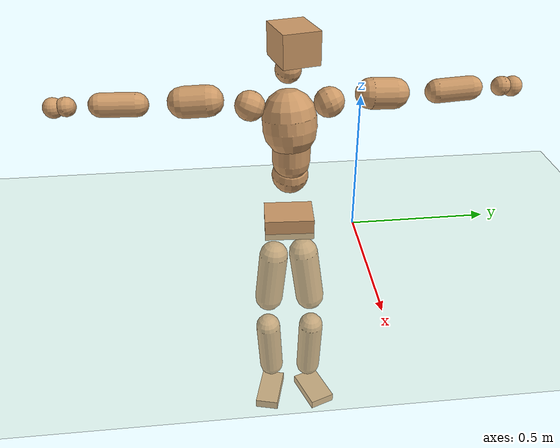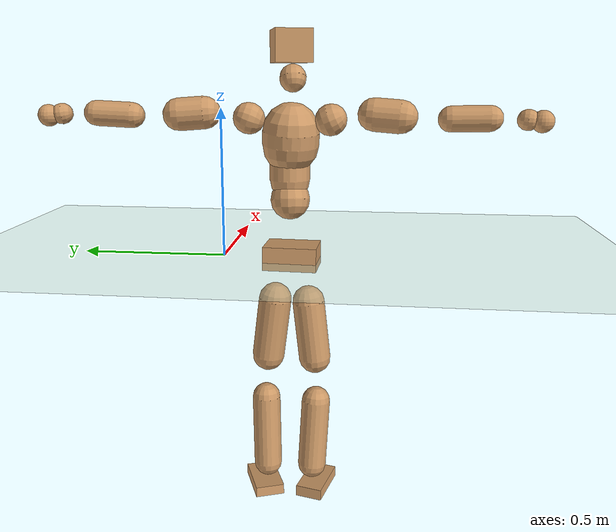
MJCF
<mujoco model="humanoid">
  <compiler coordinate="local" angle="radian"/>
  <default>
    <joint damping="0.0" armature="0.01" stiffness="0.0" limited="true"/>
    <geom conaffinity="1" condim="3" contype="7" margin="0.001" rgba="0.8 0.6 .4 1"/>
  </default>
  <asset>
    <texture type="skybox" builtin="gradient" rgb1=".4 .5 .6" rgb2="0 0 0" width="100" height="100"/>
    <texture builtin="flat" height="1278" mark="cross" markrgb="1 1 1" name="texgeom" random="0.01" rgb1="0.8 0.6 0.4" rgb2="0.8 0.6 0.4" type="cube" width="127"/>
    <texture builtin="checker" height="100" name="texplane" rgb1="0 0 0" rgb2="0.8 0.8 0.8" type="2d" width="100"/>
    <material name="MatPlane" reflectance="0.5" shininess="1" specular="1" texrepeat="60 60" texture="texplane"/>
    <material name="geom" texture="texgeom" texuniform="true"/>
  </asset>
  <worldbody>
    <light cutoff="100" diffuse="1 1 1" dir="-0 0 -1.3" directional="true" exponent="1" pos="0 0 1.3" specular=".1 .1 .1"/>
    <geom conaffinity="1" condim="3" name="floor" pos="0 0 0" rgba="0.8 0.9 0.8 1" size="100 100 .2" type="plane" material="MatPlane"/>
    <body name="Pelvis" pos="-0.0076 -0.2401 0.0196">
      <freejoint name="Pelvis"/>
      <geom type="box" contype="1" conaffinity="1" density="5359.374756" pos="-0.0120 0.0006 -0.0079" size="0.0676 0.0904 0.04" quat="0.9997 0.0000 0.0000 -0.0243" name="Pelvis"/>
      <body name="L_Hip" pos="-0.022 0.0476 -0.0773">
        <joint name="L_Hip_x" type="hinge" pos="0 0 0" axis="1 0 0" stiffness="1600" damping="160" armature="0.02" range="-180.0000 180.0000"/>
        <joint name="L_Hip_y" type="hinge" pos="0 0 0" axis="0 1 0" stiffness="1600" damping="160" armature="0.02" range="-180.0000 180.0000"/>
        <joint name="L_Hip_z" type="hinge" pos="0 0 0" axis="0 0 1" stiffness="1600" damping="160" armature="0.02" range="-180.0000 180.0000"/>
        <geom type="capsule" contype="1" conaffinity="1" density="2040.816327" size="0.0564" fromto="0.0043 0.0107 -0.0857 0.0151 0.0374 -0.3000" name="L_Hip"/>
        <body name="L_Knee" pos="0.0194 0.048 -0.3856">
          <joint name="L_Knee_x" type="hinge" pos="0 0 0" axis="1 0 0" stiffness="1600" damping="160" armature="0.02" range="-180.0000 180.0000"/>
          <joint name="L_Knee_y" type="hinge" pos="0 0 0" axis="0 1 0" stiffness="1600" damping="160" armature="0.02" range="-180.0000 180.0000"/>
          <joint name="L_Knee_z" type="hinge" pos="0 0 0" axis="0 0 1" stiffness="1600" damping="160" armature="0.02" range="-180.0000 180.0000"/>
          <geom type="capsule" contype="1" conaffinity="1" density="1234.567901" size="0.0499" fromto="-0.0059 -0.0023 -0.0797 -0.0246 -0.0095 -0.3341" name="L_Knee"/>
          <body name="L_Ankle" pos="-0.0305 -0.0117 -0.4137">
            <joint name="L_Ankle_x" type="hinge" pos="0 0 0" axis="1 0 0" stiffness="1600" damping="160" armature="0.02" range="-180.0000 180.0000"/>
            <joint name="L_Ankle_y" type="hinge" pos="0 0 0" axis="0 1 0" stiffness="1600" damping="160" armature="0.02" range="-180.0000 180.0000"/>
            <joint name="L_Ankle_z" type="hinge" pos="0 0 0" axis="0 0 1" stiffness="1600" damping="160" armature="0.02" range="-180.0000 180.0000"/>
            <geom type="box" contype="1" conaffinity="1" density="1000.000052" pos="0.0592 0.0223 -0.0298" size="0.0864 0.0523 0.019" quat="0.9839 0.0000 0.0000 0.1789" name="L_Ankle"/>
            <body name="L_Toe" pos="0.1185 0.0446 -0.0597">
              <joint name="L_Toe_x" type="hinge" pos="0 0 0" axis="1 0 0" stiffness="1000" damping="100" armature="0.02" range="-180.0000 180.0000"/>
              <joint name="L_Toe_y" type="hinge" pos="0 0 0" axis="0 1 0" stiffness="1000" damping="100" armature="0.02" range="-180.0000 180.0000"/>
              <joint name="L_Toe_z" type="hinge" pos="0 0 0" axis="0 0 1" stiffness="1000" damping="100" armature="0.02" range="-180.0000 180.0000"/>
              <geom type="box" contype="1" conaffinity="1" density="7764624.532306" pos="0.0000 0.0000 0.0311" size="0.001 0.0026 0.001" quat="0.9830 0.0000 0.0000 0.1833" name="L_Toe"/>
            </body>
          </body>
        </body>
      </body>
      <body name="R_Hip" pos="-0.0197 -0.0479 -0.0844">
        <joint name="R_Hip_x" type="hinge" pos="0 0 0" axis="1 0 0" stiffness="1600" damping="160" armature="0.02" range="-180.0000 180.0000"/>
        <joint name="R_Hip_y" type="hinge" pos="0 0 0" axis="0 1 0" stiffness="1600" damping="160" armature="0.02" range="-180.0000 180.0000"/>
        <joint name="R_Hip_z" type="hinge" pos="0 0 0" axis="0 0 1" stiffness="1600" damping="160" armature="0.02" range="-180.0000 180.0000"/>
        <geom type="capsule" contype="1" conaffinity="1" density="2040.816327" size="0.0554" fromto="0.0011 -0.0098 -0.0848 0.0040 -0.0337 -0.2932" name="R_Hip"/>
        <body name="R_Knee" pos="0.0051 -0.0435 -0.378">
          <joint name="R_Knee_x" type="hinge" pos="0 0 0" axis="1 0 0" stiffness="1600" damping="160" armature="0.02" range="-180.0000 180.0000"/>
          <joint name="R_Knee_y" type="hinge" pos="0 0 0" axis="0 1 0" stiffness="1600" damping="160" armature="0.02" range="-180.0000 180.0000"/>
          <joint name="R_Knee_z" type="hinge" pos="0 0 0" axis="0 0 1" stiffness="1600" damping="160" armature="0.02" range="-180.0000 180.0000"/>
          <geom type="capsule" contype="1" conaffinity="1" density="1234.567901" size="0.0503" fromto="-0.0056 0.0035 -0.0800 -0.0228 0.0143 -0.3258" name="R_Knee"/>
          <body name="R_Ankle" pos="-0.0285 0.0179 -0.4058">
            <joint name="R_Ankle_x" type="hinge" pos="0 0 0" axis="1 0 0" stiffness="1600" damping="160" armature="0.02" range="-180.0000 180.0000"/>
            <joint name="R_Ankle_y" type="hinge" pos="0 0 0" axis="0 1 0" stiffness="1600" damping="160" armature="0.02" range="-180.0000 180.0000"/>
            <joint name="R_Ankle_z" type="hinge" pos="0 0 0" axis="0 0 1" stiffness="1600" damping="160" armature="0.02" range="-180.0000 180.0000"/>
            <geom type="box" contype="1" conaffinity="1" density="1000.000006" pos="0.0636 -0.0164 -0.0300" size="0.0886 0.0474 0.0201" quat="0.9921 0.0000 0.0000 -0.1257" name="R_Ankle"/>
            <body name="R_Toe" pos="0.1273 -0.0328 -0.0599">
              <joint name="R_Toe_x" type="hinge" pos="0 0 0" axis="1 0 0" stiffness="1000" damping="100" armature="0.02" range="-180.0000 180.0000"/>
              <joint name="R_Toe_y" type="hinge" pos="0 0 0" axis="0 1 0" stiffness="1000" damping="100" armature="0.02" range="-180.0000 180.0000"/>
              <joint name="R_Toe_z" type="hinge" pos="0 0 0" axis="0 0 1" stiffness="1000" damping="100" armature="0.02" range="-180.0000 180.0000"/>
              <geom type="box" contype="1" conaffinity="1" density="8851288.251352" pos="0.0000 0.0000 0.0320" size="0.0009 0.0024 0.0011" quat="0.9932 0.0000 0.0000 -0.1166" name="R_Toe"/>
            </body>
          </body>
        </body>
      </body>
      <body name="Torso" pos="-0.0305 0.0038 0.1143">
        <joint name="Torso_x" type="hinge" pos="0 0 0" axis="1 0 0" stiffness="2000" damping="200" armature="0.02" range="-180.0000 180.0000"/>
        <joint name="Torso_y" type="hinge" pos="0 0 0" axis="0 1 0" stiffness="2000" damping="200" armature="0.02" range="-180.0000 180.0000"/>
        <joint name="Torso_z" type="hinge" pos="0 0 0" axis="0 0 1" stiffness="2000" damping="200" armature="0.02" range="-180.0000 180.0000"/>
        <geom type="capsule" contype="1" conaffinity="1" density="2040.816327" size="0.0658" fromto="0.0126 0.0028 0.0708 0.0130 0.0029 0.0728" name="Torso"/>
        <body name="Spine" pos="0.0256 0.0056 0.1436">
          <joint name="Spine_x" type="hinge" pos="0 0 0" axis="1 0 0" stiffness="2000" damping="200" armature="0.02" range="-180.0000 180.0000"/>
          <joint name="Spine_y" type="hinge" pos="0 0 0" axis="0 1 0" stiffness="2000" damping="200" armature="0.02" range="-180.0000 180.0000"/>
          <joint name="Spine_z" type="hinge" pos="0 0 0" axis="0 0 1" stiffness="2000" damping="200" armature="0.02" range="-180.0000 180.0000"/>
          <geom type="capsule" contype="1" conaffinity="1" density="2040.816327" size="0.0669" fromto="0.0004 0.0002 0.0668 -0.0001 -0.0000 -0.0082" name="Spine"/>
          <body name="Chest" pos="0.0004 0.0002 0.0587">
            <joint name="Chest_x" type="hinge" pos="0 0 0" axis="1 0 0" stiffness="2000" damping="200" armature="0.02" range="-180.0000 180.0000"/>
            <joint name="Chest_y" type="hinge" pos="0 0 0" axis="0 1 0" stiffness="2000" damping="200" armature="0.02" range="-180.0000 180.0000"/>
            <joint name="Chest_z" type="hinge" pos="0 0 0" axis="0 0 1" stiffness="2000" damping="200" armature="0.02" range="-180.0000 180.0000"/>
            <geom type="capsule" contype="1" conaffinity="1" density="2040.816327" size="0.0935" fromto="-0.0131 -0.0055 0.0924 -0.0070 -0.0030 0.0495" name="Chest"/>
            <body name="Neck" pos="-0.024 -0.0149 0.2096">
              <joint name="Neck_x" type="hinge" pos="0 0 0" axis="1 0 0" stiffness="1000" damping="100" armature="0.02" range="-180.0000 180.0000"/>
              <joint name="Neck_y" type="hinge" pos="0 0 0" axis="0 1 0" stiffness="1000" damping="100" armature="0.02" range="-180.0000 180.0000"/>
              <joint name="Neck_z" type="hinge" pos="0 0 0" axis="0 0 1" stiffness="1000" damping="100" armature="0.02" range="-180.0000 180.0000"/>
              <geom type="capsule" contype="1" conaffinity="1" density="1000" size="0.0435" fromto="0.0241 0.0052 0.0484 0.0249 0.0054 0.0502" name="Neck"/>
              <body name="Head" pos="0.049 0.0106 0.0986">
                <joint name="Head_x" type="hinge" pos="0 0 0" axis="1 0 0" stiffness="1000" damping="100" armature="0.02" range="-180.0000 180.0000"/>
                <joint name="Head_y" type="hinge" pos="0 0 0" axis="0 1 0" stiffness="1000" damping="100" armature="0.02" range="-180.0000 180.0000"/>
                <joint name="Head_z" type="hinge" pos="0 0 0" axis="0 0 1" stiffness="1000" damping="100" armature="0.02" range="-180.0000 180.0000"/>
                <geom type="box" contype="1" conaffinity="1" density="2249.999835" pos="0.0255 0.0063 0.0503" size="0.0765 0.061 0.0519" quat="0.9926 0.0000 0.0000 0.1212" name="Head"/>
              </body>
            </body>
            <body name="L_Thorax" pos="-0.0141 0.0697 0.1097">
              <joint name="L_Thorax_x" type="hinge" pos="0 0 0" axis="1 0 0" stiffness="1000" damping="100" armature="0.02" range="-180.0000 180.0000"/>
              <joint name="L_Thorax_y" type="hinge" pos="0 0 0" axis="0 1 0" stiffness="1000" damping="100" armature="0.02" range="-180.0000 180.0000"/>
              <joint name="L_Thorax_z" type="hinge" pos="0 0 0" axis="0 0 1" stiffness="1000" damping="100" armature="0.02" range="-180.0000 180.0000"/>
              <geom type="capsule" contype="1" conaffinity="1" density="1000" size="0.0516" fromto="-0.0072 0.0603 0.0235 -0.0074 0.0621 0.0242" name="L_Thorax"/>
              <body name="L_Shoulder" pos="-0.0146 0.1224 0.0477">
                <joint name="L_Shoulder_x" type="hinge" pos="0 0 0" axis="1 0 0" stiffness="1000" damping="100" armature="0.02" range="-720.0000 720.0000"/>
                <joint name="L_Shoulder_y" type="hinge" pos="0 0 0" axis="0 1 0" stiffness="1000" damping="100" armature="0.02" range="-720.0000 720.0000"/>
                <joint name="L_Shoulder_z" type="hinge" pos="0 0 0" axis="0 0 1" stiffness="1000" damping="100" armature="0.02" range="-720.0000 720.0000"/>
                <geom type="capsule" contype="1" conaffinity="1" density="1000" size="0.0531" fromto="-0.0076 0.0825 -0.0059 -0.0152 0.1644 -0.0118" name="L_Shoulder"/>
                <body name="L_Elbow" pos="-0.0228 0.2469 -0.0178">
                  <joint name="L_Elbow_x" type="hinge" pos="0 0 0" axis="1 0 0" stiffness="1000" damping="100" armature="0.02" range="-720.0000 720.0000"/>
                  <joint name="L_Elbow_y" type="hinge" pos="0 0 0" axis="0 1 0" stiffness="1000" damping="100" armature="0.02" range="-720.0000 720.0000"/>
                  <joint name="L_Elbow_z" type="hinge" pos="0 0 0" axis="0 0 1" stiffness="1000" damping="100" armature="0.02" range="-720.0000 720.0000"/>
                  <geom type="capsule" contype="1" conaffinity="1" density="1000" size="0.0412" fromto="-0.0016 0.0711 0.0035 -0.0044 0.1888 0.0093" name="L_Elbow"/>
                  <body name="L_Wrist" pos="-0.006 0.2599 0.0128">
                    <joint name="L_Wrist_x" type="hinge" pos="0 0 0" axis="1 0 0" stiffness="600" damping="60" armature="0.02" range="-180.0000 180.0000"/>
                    <joint name="L_Wrist_y" type="hinge" pos="0 0 0" axis="0 1 0" stiffness="600" damping="60" armature="0.02" range="-180.0000 180.0000"/>
                    <joint name="L_Wrist_z" type="hinge" pos="0 0 0" axis="0 0 1" stiffness="600" damping="60" armature="0.02" range="-180.0000 180.0000"/>
                    <geom type="capsule" contype="1" conaffinity="1" density="1000" size="0.0337" fromto="-0.0075 0.0422 -0.0053 -0.0079 0.0441 -0.0055" name="L_Wrist"/>
                    <body name="L_Hand" pos="-0.0154 0.0863 -0.0108">
                      <joint name="L_Hand_x" type="hinge" pos="0 0 0" axis="1 0 0" stiffness="600" damping="60" armature="0.02" range="-180.0000 180.0000"/>
                      <joint name="L_Hand_y" type="hinge" pos="0 0 0" axis="0 1 0" stiffness="600" damping="60" armature="0.02" range="-180.0000 180.0000"/>
                      <joint name="L_Hand_z" type="hinge" pos="0 0 0" axis="0 0 1" stiffness="600" damping="60" armature="0.02" range="-180.0000 180.0000"/>
                      <geom type="sphere" contype="1" conaffinity="1" density="1000" size="0.0354" pos="0.0000 0.0000 0.0000" name="L_Hand"/>
                    </body>
                  </body>
                </body>
              </body>
            </body>
            <body name="R_Thorax" pos="-0.0221 -0.0802 0.1063">
              <joint name="R_Thorax_x" type="hinge" pos="0 0 0" axis="1 0 0" stiffness="1000" damping="100" armature="0.02" range="-180.0000 180.0000"/>
              <joint name="R_Thorax_y" type="hinge" pos="0 0 0" axis="0 1 0" stiffness="1000" damping="100" armature="0.02" range="-180.0000 180.0000"/>
              <joint name="R_Thorax_z" type="hinge" pos="0 0 0" axis="0 0 1" stiffness="1000" damping="100" armature="0.02" range="-180.0000 180.0000"/>
              <geom type="capsule" contype="1" conaffinity="1" density="1000" size="0.0511" fromto="-0.0031 -0.0541 0.0238 -0.0032 -0.0559 0.0246" name="R_Thorax"/>
              <body name="R_Shoulder" pos="-0.0062 -0.11 0.0484">
                <joint name="R_Shoulder_x" type="hinge" pos="0 0 0" axis="1 0 0" stiffness="1000" damping="100" armature="0.02" range="-720.0000 720.0000"/>
                <joint name="R_Shoulder_y" type="hinge" pos="0 0 0" axis="0 1 0" stiffness="1000" damping="100" armature="0.02" range="-720.0000 720.0000"/>
                <joint name="R_Shoulder_z" type="hinge" pos="0 0 0" axis="0 0 1" stiffness="1000" damping="100" armature="0.02" range="-720.0000 720.0000"/>
                <geom type="capsule" contype="1" conaffinity="1" density="1000" size="0.053" fromto="-0.0099 -0.0822 -0.0059 -0.0198 -0.1652 -0.0119" name="R_Shoulder"/>
                <body name="R_Elbow" pos="-0.0296 -0.2474 -0.0178">
                  <joint name="R_Elbow_x" type="hinge" pos="0 0 0" axis="1 0 0" stiffness="1000" damping="100" armature="0.02" range="-720.0000 720.0000"/>
                  <joint name="R_Elbow_y" type="hinge" pos="0 0 0" axis="0 1 0" stiffness="1000" damping="100" armature="0.02" range="-720.0000 720.0000"/>
                  <joint name="R_Elbow_z" type="hinge" pos="0 0 0" axis="0 0 1" stiffness="1000" damping="100" armature="0.02" range="-720.0000 720.0000"/>
                  <geom type="capsule" contype="1" conaffinity="1" density="1000" size="0.0405" fromto="-0.0007 -0.0705 0.0013 -0.0018 -0.1878 0.0034" name="R_Elbow"/>
                  <body name="R_Wrist" pos="-0.0024 -0.2583 0.0047">
                    <joint name="R_Wrist_x" type="hinge" pos="0 0 0" axis="1 0 0" stiffness="600" damping="60" armature="0.02" range="-180.0000 180.0000"/>
                    <joint name="R_Wrist_y" type="hinge" pos="0 0 0" axis="0 1 0" stiffness="600" damping="60" armature="0.02" range="-180.0000 180.0000"/>
                    <joint name="R_Wrist_z" type="hinge" pos="0 0 0" axis="0 0 1" stiffness="600" damping="60" armature="0.02" range="-180.0000 180.0000"/>
                    <geom type="capsule" contype="1" conaffinity="1" density="1000" size="0.0327" fromto="-0.0049 -0.0415 -0.0040 -0.0052 -0.0434 -0.0042" name="R_Wrist"/>
                    <body name="R_Hand" pos="-0.0101 -0.0849 -0.0082">
                      <joint name="R_Hand_x" type="hinge" pos="0 0 0" axis="1 0 0" stiffness="600" damping="60" armature="0.02" range="-180.0000 180.0000"/>
                      <joint name="R_Hand_y" type="hinge" pos="0 0 0" axis="0 1 0" stiffness="600" damping="60" armature="0.02" range="-180.0000 180.0000"/>
                      <joint name="R_Hand_z" type="hinge" pos="0 0 0" axis="0 0 1" stiffness="600" damping="60" armature="0.02" range="-180.0000 180.0000"/>
                      <geom type="sphere" contype="1" conaffinity="1" density="1000" size="0.0344" pos="0.0000 0.0000 0.0000" name="R_Hand"/>
                    </body>
                  </body>
                </body>
              </body>
            </body>
          </body>
        </body>
      </body>
    </body>
  </worldbody>
  <actuator>
    <motor name="L_Hip_x" joint="L_Hip_x" gear="500"/>
    <motor name="L_Hip_y" joint="L_Hip_y" gear="500"/>
    <motor name="L_Hip_z" joint="L_Hip_z" gear="500"/>
    <motor name="L_Knee_x" joint="L_Knee_x" gear="500"/>
    <motor name="L_Knee_y" joint="L_Knee_y" gear="500"/>
    <motor name="L_Knee_z" joint="L_Knee_z" gear="500"/>
    <motor name="L_Ankle_x" joint="L_Ankle_x" gear="500"/>
    <motor name="L_Ankle_y" joint="L_Ankle_y" gear="500"/>
    <motor name="L_Ankle_z" joint="L_Ankle_z" gear="500"/>
    <motor name="L_Toe_x" joint="L_Toe_x" gear="500"/>
    <motor name="L_Toe_y" joint="L_Toe_y" gear="500"/>
    <motor name="L_Toe_z" joint="L_Toe_z" gear="500"/>
    <motor name="R_Hip_x" joint="R_Hip_x" gear="500"/>
    <motor name="R_Hip_y" joint="R_Hip_y" gear="500"/>
    <motor name="R_Hip_z" joint="R_Hip_z" gear="500"/>
    <motor name="R_Knee_x" joint="R_Knee_x" gear="500"/>
    <motor name="R_Knee_y" joint="R_Knee_y" gear="500"/>
    <motor name="R_Knee_z" joint="R_Knee_z" gear="500"/>
    <motor name="R_Ankle_x" joint="R_Ankle_x" gear="500"/>
    <motor name="R_Ankle_y" joint="R_Ankle_y" gear="500"/>
    <motor name="R_Ankle_z" joint="R_Ankle_z" gear="500"/>
    <motor name="R_Toe_x" joint="R_Toe_x" gear="500"/>
    <motor name="R_Toe_y" joint="R_Toe_y" gear="500"/>
    <motor name="R_Toe_z" joint="R_Toe_z" gear="500"/>
    <motor name="Torso_x" joint="Torso_x" gear="500"/>
    <motor name="Torso_y" joint="Torso_y" gear="500"/>
    <motor name="Torso_z" joint="Torso_z" gear="500"/>
    <motor name="Spine_x" joint="Spine_x" gear="500"/>
    <motor name="Spine_y" joint="Spine_y" gear="500"/>
    <motor name="Spine_z" joint="Spine_z" gear="500"/>
    <motor name="Chest_x" joint="Chest_x" gear="500"/>
    <motor name="Chest_y" joint="Chest_y" gear="500"/>
    <motor name="Chest_z" joint="Chest_z" gear="500"/>
    <motor name="Neck_x" joint="Neck_x" gear="500"/>
    <motor name="Neck_y" joint="Neck_y" gear="500"/>
    <motor name="Neck_z" joint="Neck_z" gear="500"/>
    <motor name="Head_x" joint="Head_x" gear="500"/>
    <motor name="Head_y" joint="Head_y" gear="500"/>
    <motor name="Head_z" joint="Head_z" gear="500"/>
    <motor name="L_Thorax_x" joint="L_Thorax_x" gear="500"/>
    <motor name="L_Thorax_y" joint="L_Thorax_y" gear="500"/>
    <motor name="L_Thorax_z" joint="L_Thorax_z" gear="500"/>
    <motor name="L_Shoulder_x" joint="L_Shoulder_x" gear="500"/>
    <motor name="L_Shoulder_y" joint="L_Shoulder_y" gear="500"/>
    <motor name="L_Shoulder_z" joint="L_Shoulder_z" gear="500"/>
    <motor name="L_Elbow_x" joint="L_Elbow_x" gear="500"/>
    <motor name="L_Elbow_y" joint="L_Elbow_y" gear="500"/>
    <motor name="L_Elbow_z" joint="L_Elbow_z" gear="500"/>
    <motor name="L_Wrist_x" joint="L_Wrist_x" gear="500"/>
    <motor name="L_Wrist_y" joint="L_Wrist_y" gear="500"/>
    <motor name="L_Wrist_z" joint="L_Wrist_z" gear="500"/>
    <motor name="L_Hand_x" joint="L_Hand_x" gear="500"/>
    <motor name="L_Hand_y" joint="L_Hand_y" gear="500"/>
    <motor name="L_Hand_z" joint="L_Hand_z" gear="500"/>
    <motor name="R_Thorax_x" joint="R_Thorax_x" gear="500"/>
    <motor name="R_Thorax_y" joint="R_Thorax_y" gear="500"/>
    <motor name="R_Thorax_z" joint="R_Thorax_z" gear="500"/>
    <motor name="R_Shoulder_x" joint="R_Shoulder_x" gear="500"/>
    <motor name="R_Shoulder_y" joint="R_Shoulder_y" gear="500"/>
    <motor name="R_Shoulder_z" joint="R_Shoulder_z" gear="500"/>
    <motor name="R_Elbow_x" joint="R_Elbow_x" gear="500"/>
    <motor name="R_Elbow_y" joint="R_Elbow_y" gear="500"/>
    <motor name="R_Elbow_z" joint="R_Elbow_z" gear="500"/>
    <motor name="R_Wrist_x" joint="R_Wrist_x" gear="500"/>
    <motor name="R_Wrist_y" joint="R_Wrist_y" gear="500"/>
    <motor name="R_Wrist_z" joint="R_Wrist_z" gear="500"/>
    <motor name="R_Hand_x" joint="R_Hand_x" gear="500"/>
    <motor name="R_Hand_y" joint="R_Hand_y" gear="500"/>
    <motor name="R_Hand_z" joint="R_Hand_z" gear="500"/>
  </actuator>
  <contact>
    <exclude body1="Torso" body2="Chest"/>
    <exclude body1="Head" body2="Chest"/>
    <exclude body1="R_Knee" body2="R_Toe"/>
    <exclude body1="R_Knee" body2="L_Ankle"/>
    <exclude body1="R_Knee" body2="L_Toe"/>
    <exclude body1="L_Knee" body2="L_Toe"/>
    <exclude body1="L_Knee" body2="R_Ankle"/>
    <exclude body1="L_Knee" body2="R_Toe"/>
    <exclude body1="L_Shoulder" body2="Chest"/>
    <exclude body1="R_Shoulder" body2="Chest"/>
  </contact>
  <sensor/>
  <size njmax="700" nconmax="700"/>
</mujoco>
